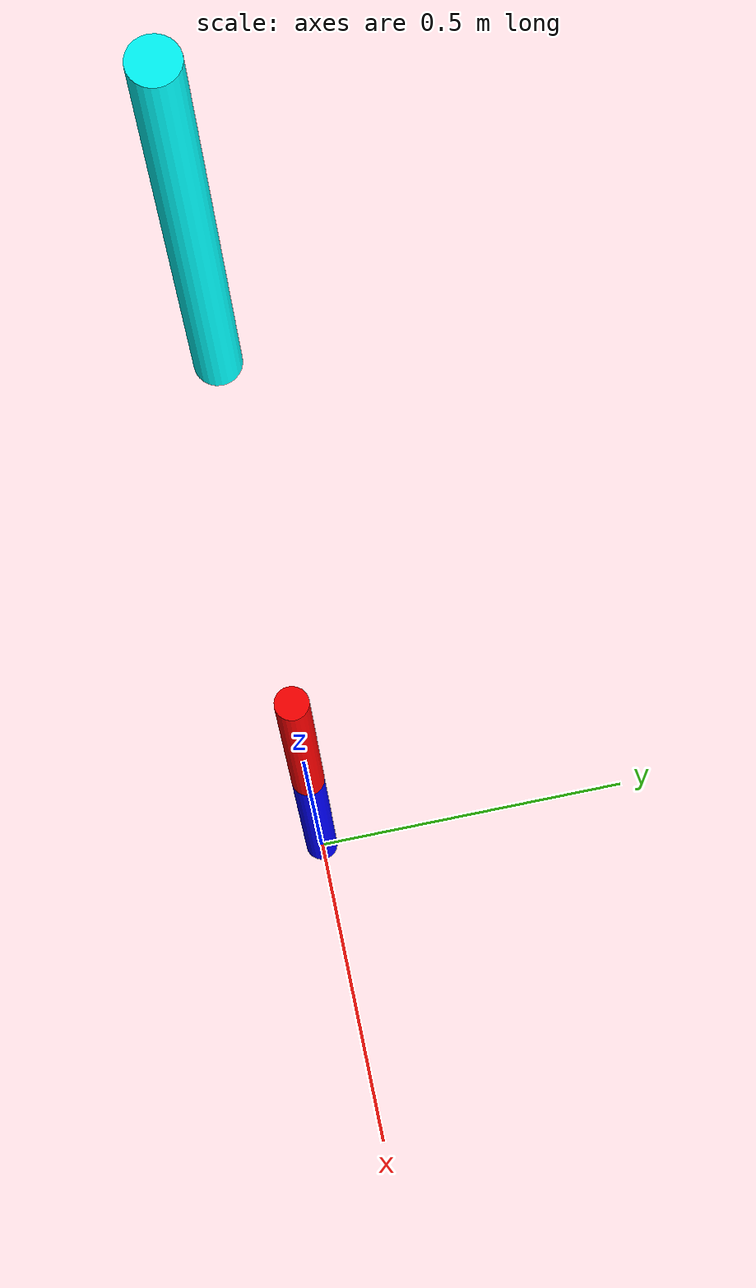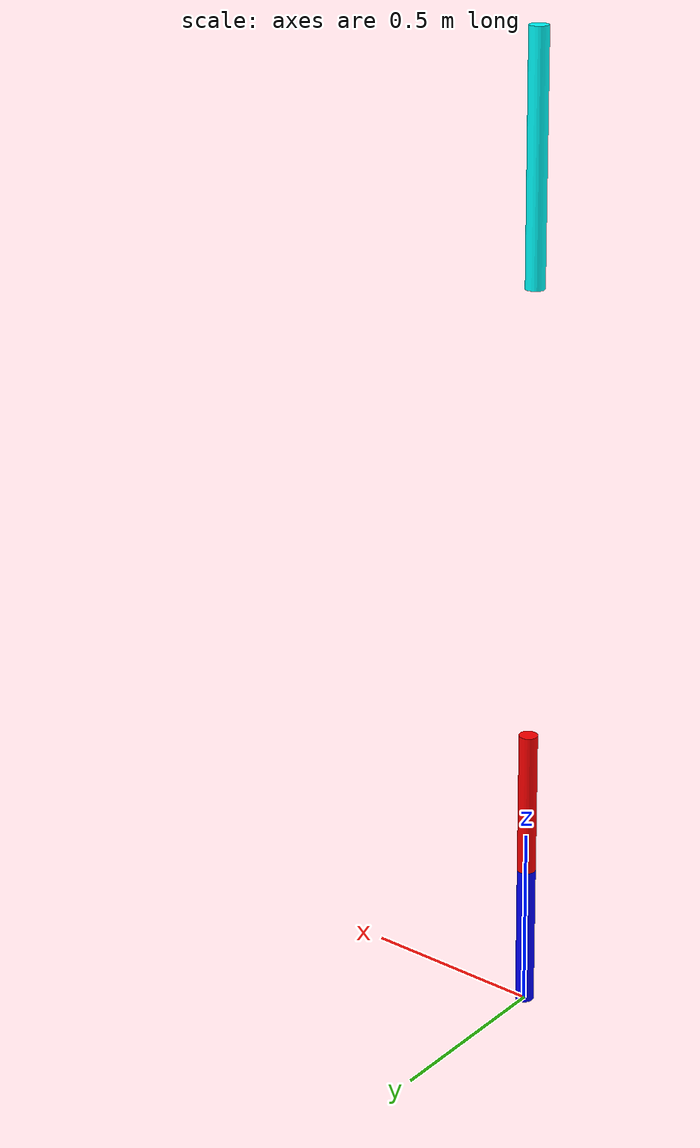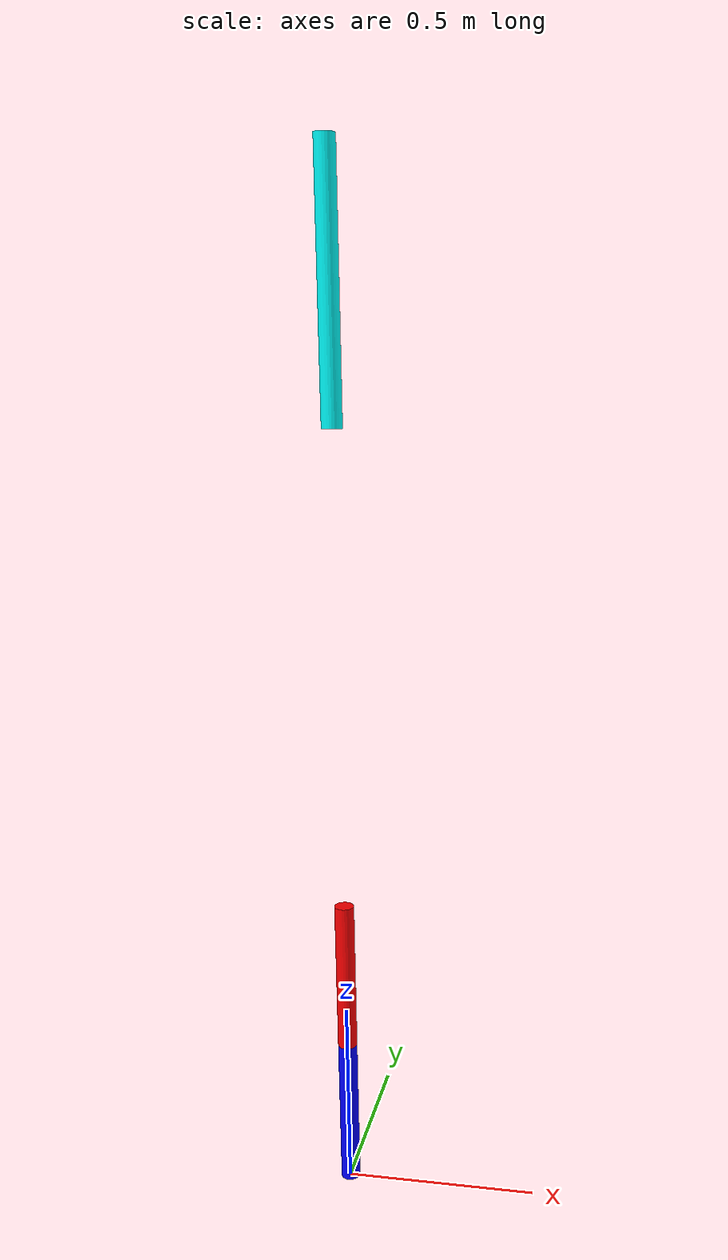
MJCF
<mujoco model="five_link_walker">
    <compiler angle="radian" />
    <option gravity="0 0 -9.81" />
    <size njmax="500" nconmax="100" />
    <worldbody>
        <geom size="0.025 0.315" pos="0 0 2.315" type="cylinder" contype="0" conaffinity="0" group="1" rgba="0 255 61 0.9" />
        <body name="right_thigh" pos="0 0 0">
            <inertial pos="0 0 0.11" quat="0.707107 0 0 0.707107" mass="6.8" diaginertia="0.156667 0.156667 0.156667" />
            <joint name="q1_right" pos="0 0 0" axis="0 1 0" />
            <geom size="0.025 0.2" pos="0 0 0.2" type="cylinder" contype="0" conaffinity="0" group="1" rgba="0 0 1 1" />
            <body name="right_shin" pos="0 0 0.4">
                <inertial pos="0 0 0.24" quat="0.707107 0 0 0.707107" mass="3.2" diaginertia="0.0666667 0.0666667 0.0666667" />
                <joint name="q2_right" pos="0 0 0" axis="0 1 0" />
                <geom size="0.025 0.2" pos="0 0 0.2" type="cylinder" contype="0" conaffinity="0" group="1" rgba="1 0 0 1" />
            </body>
        </body>
        <body name="left_thigh" pos="0 0 0">
            <inertial pos="0 0 0.11" quat="0.707107 0 0 0.707107" mass="6.8" diaginertia="0.156667 0.156667 0.156667" />
            <joint name="q1_left" pos="0 0 0" axis="0 1 0" />
            <geom size="0.025 0.2" pos="0 0 0.2" type="cylinder" contype="0" conaffinity="0" group="1" rgba="1 0 0 1" />
            <body name="left_shin" pos="0 0 0.4">
                <inertial pos="0 0 0.24" quat="0.707107 0 0 0.707107" mass="3.2" diaginertia="0.0666667 0.0666667 0.0666667" />
                <joint name="q2_left" pos="0 0 0" axis="0 1 0" />
                <geom size="0.025 0.2" pos="0 0 0.2" type="cylinder" contype="0" conaffinity="0" group="1" rgba="0 0 1 1" />
            </body>
        </body>
    </worldbody>
</mujoco>
